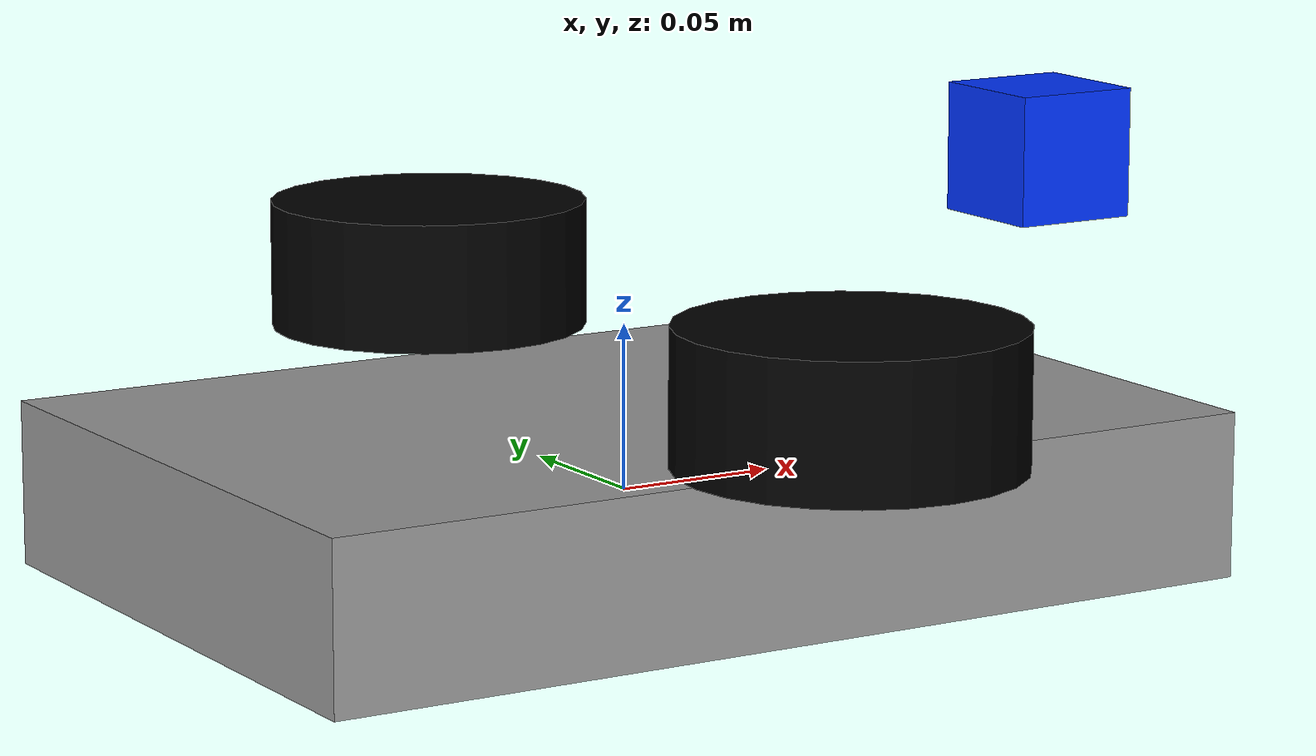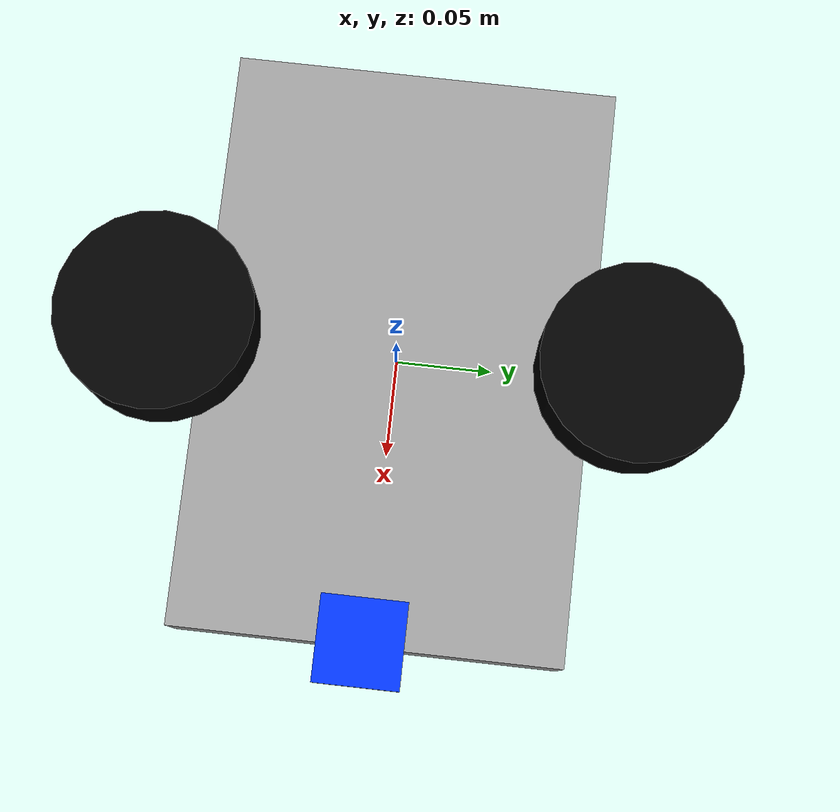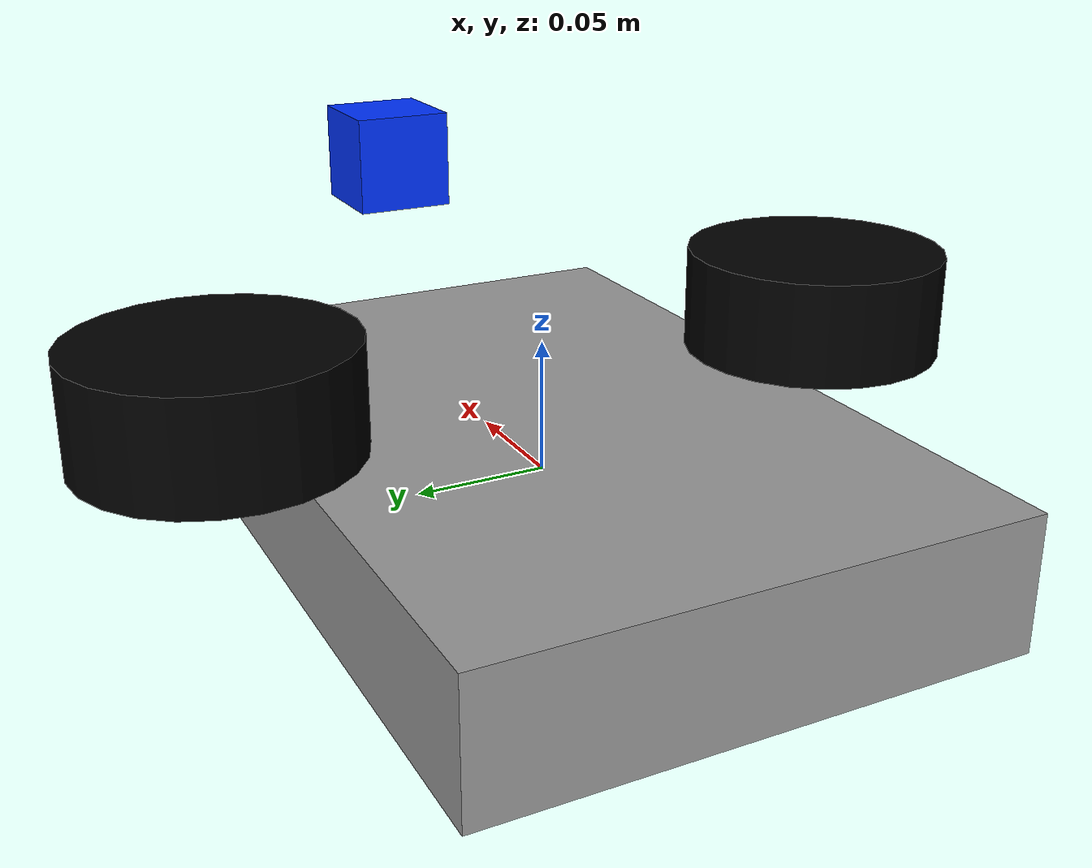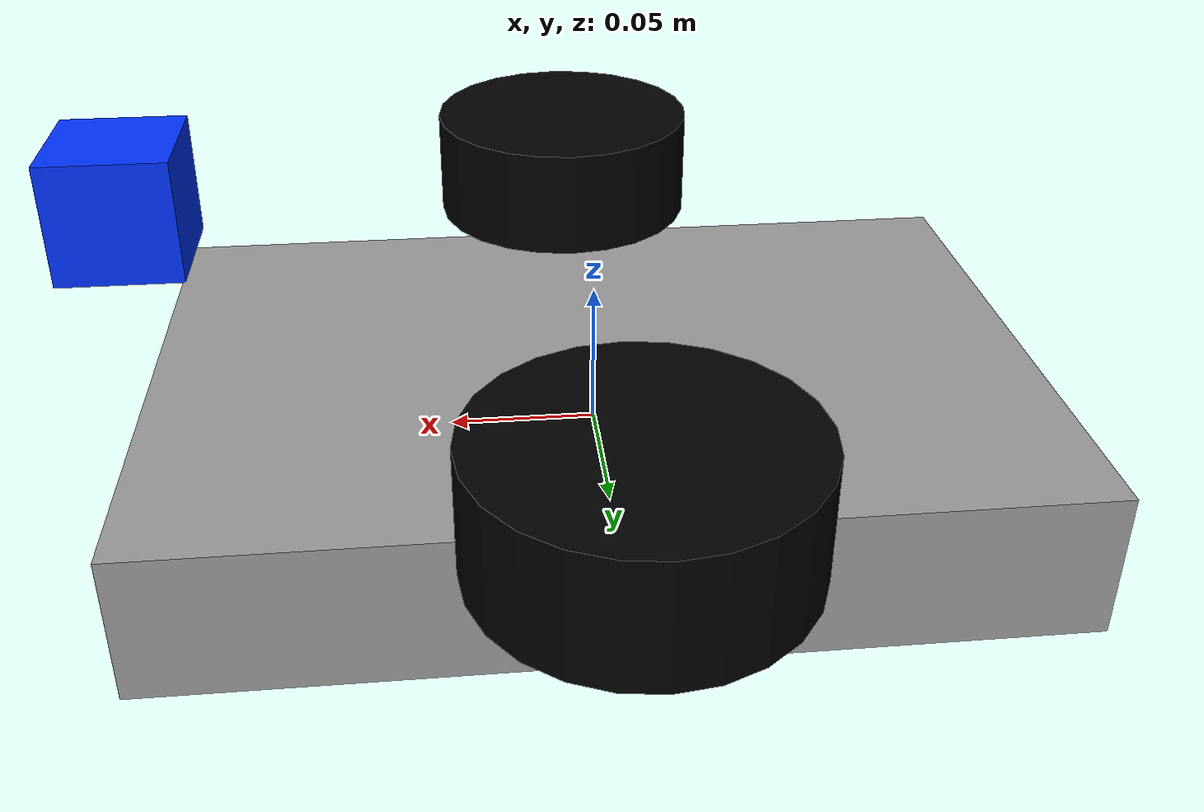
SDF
<?xml version="1.0" ?>
<sdf version="1.6">
  <model name="simple_yolo_tracker">

    <!-- Base Link -->
    <link name="base_link">
      <pose>0 0 0 0 0 0</pose>
      <inertial>
        <mass>2.0</mass>
        <inertia>
          <ixx>0.01</ixx>
          <iyy>0.02</iyy>
          <izz>0.02</izz>
          <ixy>0.0</ixy>
          <ixz>0.0</ixz>
          <iyz>0.0</iyz>
        </inertia>
      </inertial>
      <collision name="base_collision">
        <geometry>
          <box>
            <size>0.3 0.2 0.05</size>
          </box>
        </geometry>
      </collision>
      <visual name="base_visual">
        <geometry>
          <box>
            <size>0.3 0.2 0.05</size>
          </box>
        </geometry>
        <material>
          <ambient>0.6 0.6 0.6 1</ambient>
          <diffuse>0.6 0.6 0.6 1</diffuse>
        </material>
      </visual>
    </link>

    <!-- Left Wheel -->
    <link name="left_wheel">
      <pose>0 0.12 0.05 1.5708 0 0</pose>
      <inertial>
        <mass>0.3</mass>
        <inertia>
          <ixx>0.0005</ixx>
          <iyy>0.0005</iyy>
          <izz>0.0005</izz>
          <ixy>0.0</ixy>
          <ixz>0.0</ixz>
          <iyz>0.0</iyz>
        </inertia>
      </inertial>
      <collision name="left_wheel_collision">
        <pose>0 0 0 1.5708 0 0</pose>
        <geometry>
          <cylinder>
            <radius>0.05</radius>
            <length>0.04</length>
          </cylinder>
        </geometry>
      </collision>
      <visual name="left_wheel_visual">
        <pose>0 0 0 1.5708 0 0</pose>
        <geometry>
          <cylinder>
            <radius>0.05</radius>
            <length>0.04</length>
          </cylinder>
        </geometry>
        <material>
          <ambient>0.0 0.0 0.0 1</ambient>
          <diffuse>0.0 0.0 0.0 1</diffuse>
        </material>
      </visual>
    </link>
    <joint name="left_wheel_joint" type="revolute">
      <parent>base_link</parent>
      <child>left_wheel</child>
      <pose>0 0.12 0.05 0 0 0</pose>
      <axis>
        <xyz>0 1 0</xyz>
        <limit>
          <lower>-1e16</lower>
          <upper>1e16</upper>
        </limit>
      </axis>
    </joint>

    <!-- Right Wheel -->
    <link name="right_wheel">
      <pose>0 -0.12 0.05 1.5708 0 0</pose>
      <inertial>
        <mass>0.3</mass>
        <inertia>
          <ixx>0.0005</ixx>
          <iyy>0.0005</iyy>
          <izz>0.0005</izz>
          <ixy>0.0</ixy>
          <ixz>0.0</ixz>
          <iyz>0.0</iyz>
        </inertia>
      </inertial>
      <collision name="right_wheel_collision">
        <pose>0 0 0 1.5708 0 0</pose>
        <geometry>
          <cylinder>
            <radius>0.05</radius>
            <length>0.04</length>
          </cylinder>
        </geometry>
      </collision>
      <visual name="right_wheel_visual">
        <pose>0 0 0 1.5708 0 0</pose>
        <geometry>
          <cylinder>
            <radius>0.05</radius>
            <length>0.04</length>
          </cylinder>
        </geometry>
        <material>
          <ambient>0.0 0.0 0.0 1</ambient>
          <diffuse>0.0 0.0 0.0 1</diffuse>
        </material>
      </visual>
    </link>
    <joint name="right_wheel_joint" type="revolute">
      <parent>base_link</parent>
      <child>right_wheel</child>
      <pose>0 -0.12 0.05 0 0 0</pose>
      <axis>
        <xyz>0 1 0</xyz>
        <limit>
          <lower>-1e16</lower>
          <upper>1e16</upper>
        </limit>
      </axis>
    </joint>

    <!-- Camera -->
    <link name="camera_link">
      <pose>0.15 0 0.09 0 0 0</pose>
      <inertial>
        <mass>0.1</mass>
        <inertia>
          <ixx>0.0001</ixx>
          <iyy>0.0001</iyy>
          <izz>0.0001</izz>
          <ixy>0.0</ixy>
          <ixz>0.0</ixz>
          <iyz>0.0</iyz>
        </inertia>
      </inertial>
      <collision name="camera_collision">
        <geometry>
          <box>
            <size>0.04 0.04 0.04</size>
          </box>
        </geometry>
      </collision>
      <visual name="camera_visual">
        <geometry>
          <box>
            <size>0.04 0.04 0.04</size>
          </box>
        </geometry>
        <material>
          <ambient>0.0 0.2 1.0 1</ambient>
          <diffuse>0.0 0.2 1.0 1</diffuse>
        </material>
      </visual>
      <!-- Gazebo Camera Sensor Plugin -->
      <sensor name="camera" type="camera">
        <always_on>1</always_on>
        <update_rate>30</update_rate>
        <visualize>true</visualize>
        <camera>
          <horizontal_fov>1.047</horizontal_fov>
          <image>
            <width>640</width>
            <height>480</height>
            <format>R8G8B8</format>
          </image>
          <clip>
            <near>0.1</near>
            <far>100</far>
          </clip>
        </camera>
        <plugin name="camera_controller" filename="libgazebo_ros_camera.so">
          <ros>
            <namespace>/</namespace>
            <remapping>image_raw:=/camera/image_raw</remapping>
          </ros>
          <camera_name>camera</camera_name>
          <frame_name>camera_link</frame_name>
        </plugin>
      </sensor>
    </link>
    <joint name="camera_joint" type="fixed">
      <parent>base_link</parent>
      <child>camera_link</child>
      <pose>0.15 0 0.09 0 0 0</pose>
    </joint>
  </model>
</sdf>
